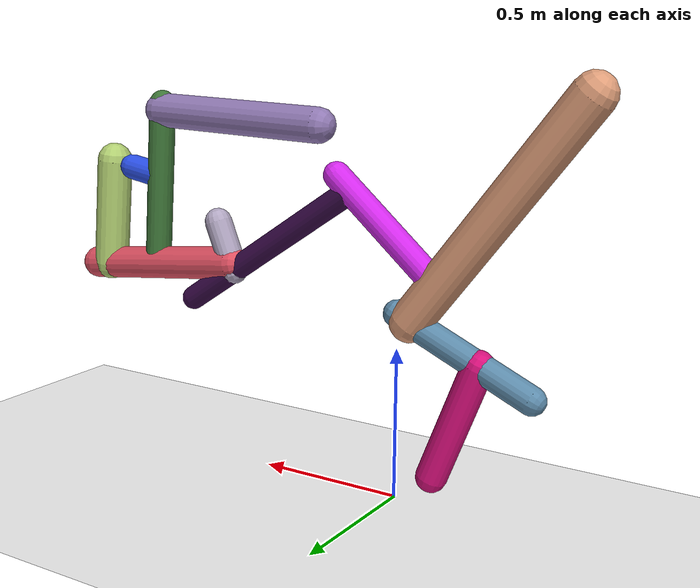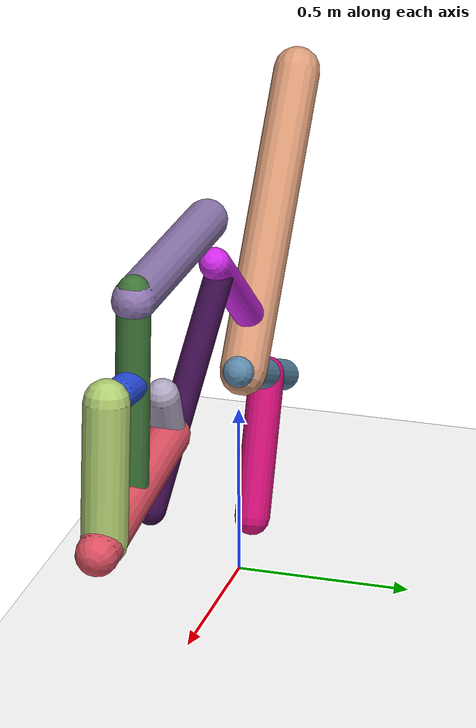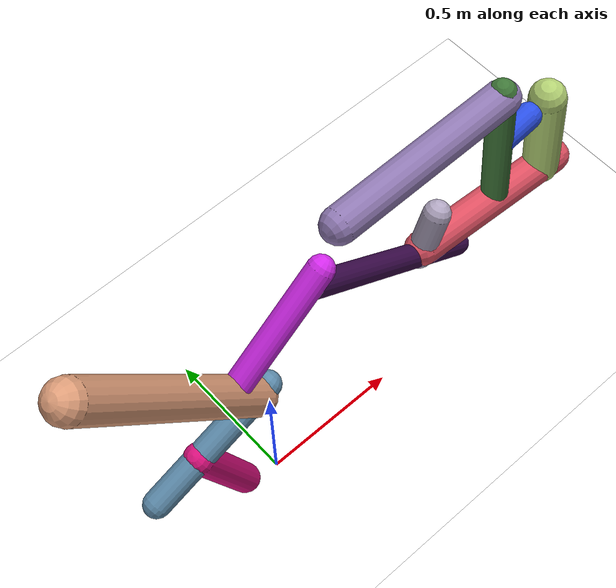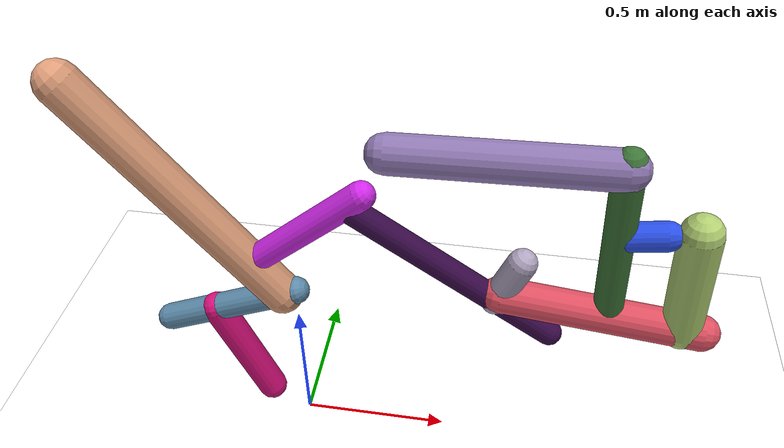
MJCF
<mujoco model="morphology">
  <option timestep="0.01"/>
  <default>
    <default class="/"/>
    <default class="0/"/>
    <default class="0/1/"/>
    <default class="0/2/"/>
    <default class="0/2/3/"/>
    <default class="0/2/3/4/"/>
    <default class="0/2/3/4/5/"/>
    <default class="0/2/3/4/5/6/"/>
    <default class="0/2/3/4/5/6/7/"/>
    <default class="0/2/3/4/5/6/8/"/>
    <default class="0/2/3/4/5/6/8/9/"/>
    <default class="0/2/3/4/5/6/8/10/"/>
  </default>
  <asset>
    <texture name="texplane" type="2d" builtin="checker" rgb1="0.10000000000000001 0.20000000000000001 0.29999999999999999" rgb2="0.20000000000000001 0.29999999999999999 0.40000000000000002" width="300" height="300"/>
    <material name="MatPlane" class="/" texture="texplane" texrepeat="20 20" specular="1" shininess="1" reflectance="0.5"/>
  </asset>
  <worldbody>
    <light name="//unnamed_light_0" class="/" directional="true" pos="0 0 1.5" dir="0 0 -1.3" cutoff="100" exponent="1" diffuse="1 1 1" specular="0.10000000000000001 0.10000000000000001 0.10000000000000001"/>
    <geom name="ground" class="/" type="plane" size="15 15 0.5" material="MatPlane" rgba="1 1 1 1"/>
    <site name="body" class="/" size="9.9999999999999995e-07 9.9999999999999995e-07 9.9999999999999995e-07" pos="0 0 0.61594805717468259"/>
    <body pos="0 0 0.61594805717468259" name="0/">
      <joint name="0/rootx/" class="/" type="slide" axis="1 0 0" limited="false" stiffness="0" armature="0" damping="0"/>
      <joint name="0/rootz/" class="/" type="slide" axis="0 0 1" limited="false" stiffness="0" armature="0" damping="0"/>
      <joint name="0/rooty/" class="/" type="hinge" axis="0 1 0" limited="false" stiffness="0" armature="0" damping="0"/>
      <geom name="0/geom" class="0/" type="capsule" contype="1" conaffinity="1" condim="3" size="0.045744229687927934" rgba="0.36128500763511973 0.54069260838645161 0.66476686928309225 1" friction="0.59999999999999998 0.10000000000000001 0.10000000000000001" fromto="0 0 0 -0.45855379837703619 0 -0.20076801477870798"/>
      <site name="0/end0" class="0/" size="0.0050000000000000001" pos="-0.45855379837703619 0 -0.20076801477870798"/>
      <site name="0/attach1" class="0/" size="9.9999999999999995e-07 9.9999999999999995e-07 9.9999999999999995e-07" pos="-0.28314982702028141 0 -0.12397112150634693"/>
      <body pos="-0.28314982702028141 0 -0.12397112150634693" name="0/1/">
        <joint name="0/1/joint/" class="0/" type="hinge" axis="0 1 0" limited="true" range="-50.901158824521289 50.901158824521289"/>
        <geom name="0/1/geom" class="0/1/" type="capsule" contype="1" conaffinity="1" condim="3" size="0.051182388561193115" rgba="0.84495197798189292 0.059936891817057858 0.48528588135571205 1" friction="0.59999999999999998 0.10000000000000001 0.10000000000000001" fromto="0 0 0 0.14978147176764312 0 -0.39197692751684426"/>
        <site name="0/1/end1" class="0/1/" size="0.0050000000000000001" pos="0.14978147176764312 0 -0.39197692751684426"/>
      </body>
      <site name="0/attach2" class="0/" size="9.9999999999999995e-07 9.9999999999999995e-07 9.9999999999999995e-07" pos="-0.044717842590392083 0 -0.019578755020316887"/>
      <body pos="-0.044717842590392083 0 -0.019578755020316887" name="0/2/">
        <joint name="0/2/joint/" class="0/" type="hinge" axis="0 1 0" limited="true" range="-63.515943216442814 63.515943216442814"/>
        <geom name="0/2/geom" class="0/2/" type="capsule" contype="1" conaffinity="1" condim="3" size="0.067239519133764622" rgba="0.86033322933606637 0.60985470093951766 0.46836797553159326 1" friction="0.59999999999999998 0.10000000000000001 0.10000000000000001" fromto="0 0 0 -0.55071162314175803 0 0.71974953029556943"/>
        <site name="0/2/end2" class="0/2/" size="0.0050000000000000001" pos="-0.55071162314175803 0 0.71974953029556943"/>
        <site name="0/2/attach3" class="0/2/" size="9.9999999999999995e-07 9.9999999999999995e-07 9.9999999999999995e-07" pos="-0.094094943554217922 0 0.12297686952741781"/>
        <body pos="-0.094094943554217922 0 0.12297686952741781" name="0/2/3/">
          <joint name="0/2/3/joint/" class="0/2/" type="hinge" axis="0 1 0" limited="true" range="-60.638381879826014 60.638381879826014"/>
          <geom name="0/2/3/geom" class="0/2/3/" type="capsule" contype="1" conaffinity="1" condim="3" size="0.044117966581718585" rgba="0.82255121182904101 0.15938157292879351 0.91452018279400082 1" friction="0.59999999999999998 0.10000000000000001 0.10000000000000001" fromto="0 0 0 0.36550523149538283 0 0.3139808657449612"/>
          <site name="0/2/3/end3" class="0/2/3/" size="0.0050000000000000001" pos="0.36550523149538283 0 0.3139808657449612"/>
          <site name="0/2/3/attach4" class="0/2/3/" size="9.9999999999999995e-07 9.9999999999999995e-07 9.9999999999999995e-07" pos="0.31340953396787985 0 0.26922896946059943"/>
          <body pos="0.31340953396787985 0 0.26922896946059943" name="0/2/3/4/">
            <joint name="0/2/3/4/joint/" class="0/2/3/" type="hinge" axis="0 1 0" limited="true" range="-33.447930826940421 33.447930826940421"/>
            <geom name="0/2/3/4/geom" class="0/2/3/4/" type="capsule" contype="1" conaffinity="1" condim="3" size="0.040871593064112005" rgba="0.21933047816124984 0.038800074467960188 0.2813526751259523 1" friction="0.59999999999999998 0.10000000000000001 0.10000000000000001" fromto="0 0 0 0.6415432527797198 0 -0.43170758437473949"/>
            <site name="0/2/3/4/end4" class="0/2/3/4/" size="0.0050000000000000001" pos="0.6415432527797198 0 -0.43170758437473949"/>
            <site name="0/2/3/4/attach5" class="0/2/3/4/" size="9.9999999999999995e-07 9.9999999999999995e-07 9.9999999999999995e-07" pos="0.46285745766852965 0 -0.31146625592916027"/>
            <body pos="0.46285745766852965 0 -0.31146625592916027" name="0/2/3/4/5/">
              <geom name="0/2/3/4/5/geom" class="0/2/3/4/5/" type="capsule" contype="1" conaffinity="1" condim="3" size="0.046207657785345156" rgba="0.68993654402305316 0.64770389829584818 0.75376035200505143 1" friction="0.59999999999999998 0.10000000000000001 0.10000000000000001" fromto="0 0 0 0.064603251944354456 0 0.161931664774283"/>
              <site name="0/2/3/4/5/end5" class="0/2/3/4/5/" size="0.0050000000000000001" pos="0.064603251944354456 0 0.161931664774283"/>
              <site name="0/2/3/4/5/attach6" class="0/2/3/4/5/" size="9.9999999999999995e-07 9.9999999999999995e-07 9.9999999999999995e-07" pos="0.0096113846477581776 0 0.024091473261099155"/>
              <body pos="0.0096113846477581776 0 0.024091473261099155" name="0/2/3/4/5/6/">
                <joint name="0/2/3/4/5/6/joint/" class="0/2/3/4/5/" type="hinge" axis="0 1 0" limited="true" range="-48.133027575815824 48.133027575815824"/>
                <geom name="0/2/3/4/5/6/geom" class="0/2/3/4/5/6/" type="capsule" contype="1" conaffinity="1" condim="3" size="0.057329564611298733" rgba="0.85988661735621708 0.30929372062238869 0.37719031246822821 1" friction="0.59999999999999998 0.10000000000000001 0.10000000000000001" fromto="0 0 0 0.61396109136790855 0 -0.067555485682502914"/>
                <site name="0/2/3/4/5/6/end6" class="0/2/3/4/5/6/" size="0.0050000000000000001" pos="0.61396109136790855 0 -0.067555485682502914"/>
                <site name="0/2/3/4/5/6/attach7" class="0/2/3/4/5/6/" size="9.9999999999999995e-07 9.9999999999999995e-07 9.9999999999999995e-07" pos="0.55402195892612915 0 -0.060960251456062611"/>
                <body pos="0.55402195892612915 0 -0.060960251456062611" name="0/2/3/4/5/6/7/">
                  <geom name="0/2/3/4/5/6/7/geom" class="0/2/3/4/5/6/7/" type="capsule" contype="1" conaffinity="1" condim="3" size="0.061419447070508254" rgba="0.69063994325523337 0.80571994945681791 0.44295160084425067 1" friction="0.59999999999999998 0.10000000000000001 0.10000000000000001" fromto="0 0 0 -0.035797212674856915 0 0.37585116959191378"/>
                  <site name="0/2/3/4/5/6/7/end7" class="0/2/3/4/5/6/7/" size="0.0050000000000000001" pos="-0.035797212674856915 0 0.37585116959191378"/>
                </body>
                <site name="0/2/3/4/5/6/attach8" class="0/2/3/4/5/6/" size="9.9999999999999995e-07 9.9999999999999995e-07 9.9999999999999995e-07" pos="0.32889258698749191 0 -0.036188772812641795"/>
                <body pos="0.32889258698749191 0 -0.036188772812641795" name="0/2/3/4/5/6/8/">
                  <geom name="0/2/3/4/5/6/8/geom" class="0/2/3/4/5/6/8/" type="capsule" contype="1" conaffinity="1" condim="3" size="0.045301519083017293" rgba="0.24273079078667825 0.45958348299271068 0.217582005887064 1" friction="0.59999999999999998 0.10000000000000001 0.10000000000000001" fromto="0 0 0 -0.041852986016670646 0 0.56146708872636664"/>
                  <site name="0/2/3/4/5/6/8/end8" class="0/2/3/4/5/6/8/" size="0.0050000000000000001" pos="-0.041852986016670646 0 0.56146708872636664"/>
                  <site name="0/2/3/4/5/6/8/attach9" class="0/2/3/4/5/6/8/" size="9.9999999999999995e-07 9.9999999999999995e-07 9.9999999999999995e-07" pos="-0.040152697802986415 0 0.53865734528409981"/>
                  <body pos="-0.040152697802986415 0 0.53865734528409981" name="0/2/3/4/5/6/8/9/">
                    <geom name="0/2/3/4/5/6/8/9/geom" class="0/2/3/4/5/6/8/9/" type="capsule" contype="1" conaffinity="1" condim="3" size="0.058332065312652032" rgba="0.56009072966751072 0.47163976260557072 0.69643707926293075 1" friction="0.59999999999999998 0.10000000000000001 0.10000000000000001" fromto="0 0 0 -0.63864092913253634 0 -0.018389319672662774"/>
                    <site name="0/2/3/4/5/6/8/9/end9" class="0/2/3/4/5/6/8/9/" size="0.0050000000000000001" pos="-0.63864092913253634 0 -0.018389319672662774"/>
                  </body>
                  <site name="0/2/3/4/5/6/8/attach10" class="0/2/3/4/5/6/8/" size="9.9999999999999995e-07 9.9999999999999995e-07 9.9999999999999995e-07" pos="-0.023280994728919369 0 0.31231970707881329"/>
                  <body pos="-0.023280994728919369 0 0.31231970707881329" name="0/2/3/4/5/6/8/10/">
                    <geom name="0/2/3/4/5/6/8/10/geom" class="0/2/3/4/5/6/8/10/" type="capsule" contype="1" conaffinity="1" condim="3" size="0.043641445784849499" rgba="0.16429956379708233 0.31184388602273327 0.90316522255766074 1" friction="0.59999999999999998 0.10000000000000001 0.10000000000000001" fromto="0 0 0 0.12829433520627076 0 0.020949307588026045"/>
                    <site name="0/2/3/4/5/6/8/10/end10" class="0/2/3/4/5/6/8/10/" size="0.0050000000000000001" pos="0.12829433520627076 0 0.020949307588026045"/>
                  </body>
                </body>
              </body>
            </body>
          </body>
        </body>
      </body>
      <camera name="0/side" class="0/" mode="trackcom" pos="0.40000000000000002 -4 0.20000000000000001" quat="0.70699999999999996 0.70699999999999996 0 0"/>
    </body>
  </worldbody>
  <actuator>
    <motor name="0/1/motor" class="0/1/" ctrllimited="true" ctrlrange="-1 1" gear="60" joint="0/1/joint/"/>
    <motor name="0/2/motor" class="0/2/" ctrllimited="true" ctrlrange="-1 1" gear="60" joint="0/2/joint/"/>
    <motor name="0/2/3/motor" class="0/2/3/" ctrllimited="true" ctrlrange="-1 1" gear="67" joint="0/2/3/joint/"/>
    <motor name="0/2/3/4/motor" class="0/2/3/4/" ctrllimited="true" ctrlrange="-1 1" gear="81" joint="0/2/3/4/joint/"/>
    <motor name="0/2/3/4/5/6/motor" class="0/2/3/4/5/6/" ctrllimited="true" ctrlrange="-1 1" gear="71" joint="0/2/3/4/5/6/joint/"/>
  </actuator>
  <sensor>
    <subtreelinvel name="velocity" body="0/"/>
  </sensor>
</mujoco>
